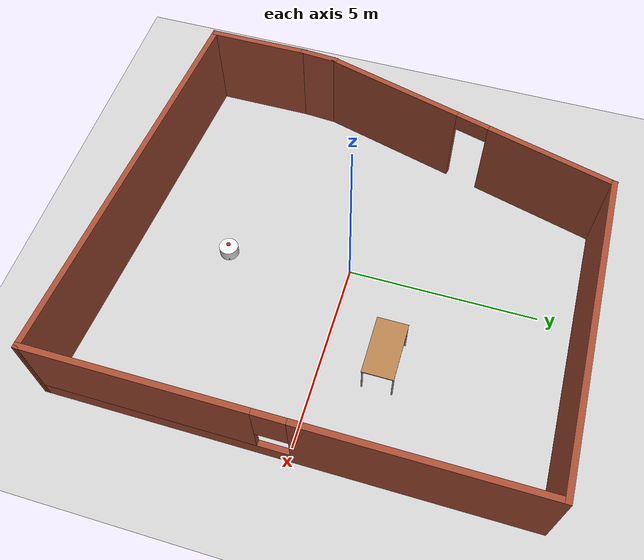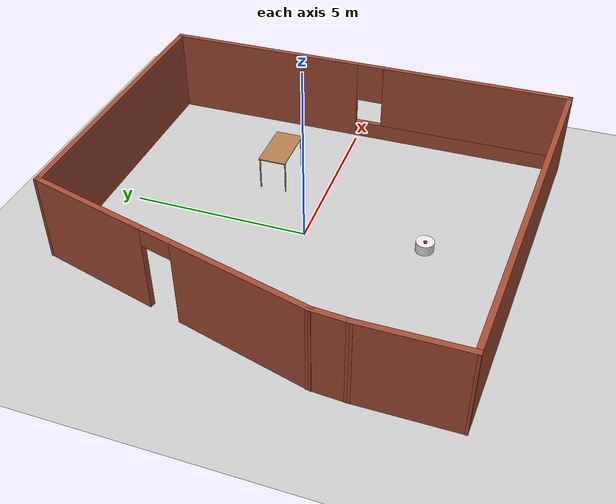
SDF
<sdf version="1.7">
 <world name="default">
  <light name="sun" type="directional">
   <pose>0 0 10 0 -0 0</pose>
   <diffuse>0.8 0.8 0.8 1</diffuse>
   <specular>0.2 0.2 0.2 1</specular>
   <attenuation>
    <range>1000</range>
    <constant>0.9</constant>
    <linear>0.01</linear>
    <quadratic>0.001</quadratic>
   </attenuation>
   <direction>-0.5 0.1 -0.9</direction>
   <spot><inner_angle>0</inner_angle><outer_angle>0</outer_angle><falloff>0</falloff></spot>
  </light>
  <model name="ground_plane">
   <static>1</static>
   <link name="link">
    <collision name="collision">
     <geometry><plane><normal>0 0 1</normal><size>100 100</size></plane></geometry>
     <surface><friction><ode><mu>100</mu><mu2>50</mu2></ode></friction></surface>
    </collision>
    <visual name="visual">
     <cast_shadows>0</cast_shadows>
     <geometry><plane><normal>0 0 1</normal><size>100 100</size></plane></geometry>
     <material>
      <script><uri>file://media/materials/scripts/gazebo.material</uri><name>Gazebo/Grey</name></script>
     </material>
    </visual>
   </link>
  </model>
  <gravity>0 0 -9.8</gravity>
  <magnetic_field>6e-06 2.3e-05 -4.2e-05</magnetic_field>
  <atmosphere type="adiabatic"/>
  <physics type="ode">
   <max_step_size>0.001</max_step_size>
   <real_time_factor>1</real_time_factor>
   <real_time_update_rate>1000</real_time_update_rate>
  </physics>
  <scene><ambient>0.4 0.4 0.4 1</ambient><background>0.7 0.7 0.7 1</background><shadows>1</shadows></scene>
  <spherical_coordinates>
   <surface_model>EARTH_WGS84</surface_model>
   <latitude_deg>0</latitude_deg>
   <longitude_deg>0</longitude_deg>
   <elevation>0</elevation>
   <heading_deg>0</heading_deg>
  </spherical_coordinates>
  <model name="my_bot">
   <link name="base_link">
    <inertial>
     <pose>0.063333 0 0.171667 0 -0 0</pose>
     <mass>0.3</mass>
     <inertia>
      <ixx>0.00760333</ixx>
      <ixy>0</ixy>
      <ixz>0.00238667</ixz>
      <iyy>0.00861</iyy>
      <iyz>0</iyz>
      <izz>0.00435667</izz>
     </inertia>
    </inertial>
    <collision name="base_link_fixed_joint_lump__chassis_collision">
     <pose>0.05 0 0.175 0 -0 0</pose>
     <geometry><cylinder><length>0.3</length><radius>0.25</radius></cylinder></geometry>
    </collision>
    <collision name="base_link_fixed_joint_lump__caster_wheel_collision_1">
     <pose>0.14 0 0 0 -0 0</pose>
     <geometry><sphere><radius>0.05</radius></sphere></geometry>
     <surface><friction><ode><mu>0.001</mu><mu2>0.001</mu2></ode></friction></surface>
    </collision>
    <collision name="base_link_fixed_joint_lump__laser_frame_collision_2">
     <pose>0 0 0.34 0 -0 0</pose>
     <geometry><cylinder><length>0.04</length><radius>0.05</radius></cylinder></geometry>
    </collision>
    <visual name="base_link_fixed_joint_lump__chassis_visual">
     <pose>0.05 0 0.175 0 -0 0</pose>
     <geometry><cylinder><length>0.3</length><radius>0.25</radius></cylinder></geometry>
     <material>
      <script><name>Gazebo/White</name><uri>file://media/materials/scripts/gazebo.material</uri></script>
     </material>
    </visual>
    <visual name="base_link_fixed_joint_lump__camera_link_visual_1">
     <pose>0.3 0 0.08 0 -0 0</pose>
     <geometry><box><size>0.01 0.03 0.03</size></box></geometry>
     <material>
      <script><name>Gazebo/Red</name><uri>file://media/materials/scripts/gazebo.material</uri></script>
     </material>
    </visual>
    <visual name="base_link_fixed_joint_lump__caster_wheel_visual_2">
     <pose>0.14 0 0 0 -0 0</pose>
     <geometry><sphere><radius>0.05</radius></sphere></geometry>
     <material>
      <script><name>Gazebo/Black</name><uri>file://media/materials/scripts/gazebo.material</uri></script>
     </material>
    </visual>
    <visual name="base_link_fixed_joint_lump__laser_frame_visual_3">
     <pose>0 0 0.34 0 -0 0</pose>
     <geometry><cylinder><length>0.04</length><radius>0.05</radius></cylinder></geometry>
     <material>
      <script><name>Gazebo/Red</name><uri>file://media/materials/scripts/gazebo.material</uri></script>
     </material>
    </visual>
    <sensor name="camera" type="camera">
     <visualize>1</visualize>
     <update_rate>10</update_rate>
     <camera>
      <horizontal_fov>1.089</horizontal_fov>
      <image><format>R8G8B8</format><width>640</width><height>480</height></image>
      <clip><near>0.05</near><far>8</far></clip>
     </camera>
     <plugin name="camera_controller" filename="libgazebo_ros_camera.so">
      <frame_name>camera_link_optical</frame_name>
     </plugin>
     <pose>0.3 0 0.08 0 -0 0</pose>
    </sensor>
    <sensor name="laser" type="ray">
     <visualize>0</visualize>
     <update_rate>10</update_rate>
     <ray>
      <scan>
       <horizontal>
        <samples>360</samples>
        <min_angle>-3.14</min_angle>
        <max_angle>3.14</max_angle>
        <resolution>1</resolution>
       </horizontal>
       <vertical><samples>1</samples><min_angle>0</min_angle><max_angle>0</max_angle></vertical>
      </scan>
      <range><min>0.3</min><max>12</max></range>
     </ray>
     <plugin name="laser_controller" filename="libgazebo_ros_ray_sensor.so">
      <ros><argument>~/out:=scan</argument></ros>
      <output_type>sensor_msgs/LaserScan</output_type>
      <frame_name>laser_frame</frame_name>
     </plugin>
     <pose>0 0 0.34 0 -0 0</pose>
    </sensor>
   </link>
   <joint name="left_wheel_joint" type="revolute">
    <pose relative_to="base_link">0 0.175 0 -1.5708 0 0</pose>
    <parent>base_link</parent>
    <child>left_wheel</child>
    <axis>
     <xyz>0 0 1</xyz>
     <limit><lower>-1e+16</lower><upper>1e+16</upper></limit>
     <dynamics><spring_reference>0</spring_reference><spring_stiffness>0</spring_stiffness></dynamics>
    </axis>
   </joint>
   <link name="left_wheel">
    <pose relative_to="left_wheel_joint">0 0 0 0 -0 0</pose>
    <inertial>
     <mass>0.1</mass>
     <inertia>
      <ixx>8.33333e-05</ixx>
      <ixy>0</ixy>
      <ixz>0</ixz>
      <iyy>8.33333e-05</iyy>
      <iyz>0</iyz>
      <izz>0.000125</izz>
     </inertia>
    </inertial>
    <collision name="left_wheel_collision"><geometry><sphere><radius>0.05</radius></sphere></geometry></collision>
    <visual name="left_wheel_visual">
     <geometry><cylinder><length>0.04</length><radius>0.05</radius></cylinder></geometry>
     <material>
      <script><name>Gazebo/Blue</name><uri>file://media/materials/scripts/gazebo.material</uri></script>
     </material>
    </visual>
   </link>
   <joint name="right_wheel_joint" type="revolute">
    <pose relative_to="base_link">0 -0.175 0 1.5708 -0 0</pose>
    <parent>base_link</parent>
    <child>right_wheel</child>
    <axis>
     <xyz>0 0 -1</xyz>
     <limit><lower>-1e+16</lower><upper>1e+16</upper></limit>
     <dynamics><spring_reference>0</spring_reference><spring_stiffness>0</spring_stiffness></dynamics>
    </axis>
   </joint>
   <link name="right_wheel">
    <pose relative_to="right_wheel_joint">0 0 0 0 -0 0</pose>
    <inertial>
     <mass>0.1</mass>
     <inertia>
      <ixx>8.33333e-05</ixx>
      <ixy>0</ixy>
      <ixz>0</ixz>
      <iyy>8.33333e-05</iyy>
      <iyz>0</iyz>
      <izz>0.000125</izz>
     </inertia>
    </inertial>
    <collision name="right_wheel_collision">
     <geometry><sphere><radius>0.05</radius></sphere></geometry>
    </collision>
    <visual name="right_wheel_visual">
     <geometry><cylinder><length>0.04</length><radius>0.05</radius></cylinder></geometry>
     <material>
      <script><name>Gazebo/Blue</name><uri>file://media/materials/scripts/gazebo.material</uri></script>
     </material>
    </visual>
   </link>
   <static>0</static>
   <plugin name="gazebo_ros2_control" filename="libgazebo_ros2_control.so">
    <parameters>/home/rocco/dev_ws/install/mobile_rob/share/mobile_rob/config/my_controllers.yaml</parameters>
   </plugin>
   <pose>0.29082 -3.27248 0.049999 -7e-06 -9e-06 0.347618</pose>
  </model>
  <model name="my_building">
   <pose>0.110913 -0.087671 0 0 -0 0</pose>
   <link name="Wall_0">
    <collision name="Wall_0_Collision">
     <geometry><box><size>2.75 0.15 2.5</size></box></geometry>
     <pose>0 0 1.25 0 -0 0</pose>
    </collision>
    <visual name="Wall_0_Visual">
     <pose>0 0 1.25 0 -0 0</pose>
     <geometry><box><size>2.75 0.15 2.5</size></box></geometry>
     <material>
      <script><uri>file://media/materials/scripts/gazebo.material</uri><name>Gazebo/Bricks</name></script>
      <ambient>1 1 1 1</ambient>
     </material>
     <meta><layer>0</layer></meta>
    </visual>
    <pose>-5.12996 -3.98528 0 0 -0 -1.5708</pose>
   </link>
   <link name="Wall_2">
    <collision name="Wall_2_Collision">
     <geometry><box><size>1.05777 0.15 2.5</size></box></geometry>
     <pose>0 0 1.25 0 -0 0</pose>
    </collision>
    <visual name="Wall_2_Visual">
     <pose>0 0 1.25 0 -0 0</pose>
     <geometry><box><size>1.05777 0.15 2.5</size></box></geometry>
     <material>
      <script><uri>file://media/materials/scripts/gazebo.material</uri><name>Gazebo/Bricks</name></script>
      <ambient>1 1 1 1</ambient>
     </material>
     <meta><layer>0</layer></meta>
    </visual>
    <pose>-5.09822 -2.2325 0 0 -0 -1.64078</pose>
   </link>
   <link name="Wall_4">
    <pose>-4.01826 2.13227 0 0 -0 1.309</pose>
    <visual name="Wall_4_Visual_0">
     <pose>-2.20393 0 1.25 0 -0 0</pose>
     <geometry><box><size>3.84215 0.15 2.5</size></box></geometry>
     <material>
      <script><uri>file://media/materials/scripts/gazebo.material</uri><name>Gazebo/Bricks</name></script>
      <ambient>1 1 1 1</ambient>
     </material>
     <meta><layer>0</layer></meta>
    </visual>
    <collision name="Wall_4_Collision_0">
     <geometry><box><size>3.84215 0.15 2.5</size></box></geometry>
     <pose>-2.20393 0 1.25 0 -0 0</pose>
    </collision>
    <visual name="Wall_4_Visual_1">
     <pose>2.37107 0 1.25 0 -0 0</pose>
     <geometry><box><size>3.50785 0.15 2.5</size></box></geometry>
     <material>
      <script><uri>file://media/materials/scripts/gazebo.material</uri><name>Gazebo/Bricks</name></script>
      <ambient>1 1 1 1</ambient>
     </material>
     <meta><layer>0</layer></meta>
    </visual>
    <collision name="Wall_4_Collision_1">
     <geometry><box><size>3.50785 0.15 2.5</size></box></geometry>
     <pose>2.37107 0 1.25 0 -0 0</pose>
    </collision>
    <visual name="Wall_4_Visual_2">
     <pose>0.167148 0 2.25 0 -0 0</pose>
     <geometry><box><size>0.9 0.15 0.5</size></box></geometry>
     <material>
      <script><uri>file://media/materials/scripts/gazebo.material</uri><name>Gazebo/Bricks</name></script>
      <ambient>1 1 1 1</ambient>
     </material>
     <meta><layer>0</layer></meta>
    </visual>
    <collision name="Wall_4_Collision_2">
     <geometry><box><size>0.9 0.15 0.5</size></box></geometry>
     <pose>0.167148 0 2.25 0 -0 0</pose>
    </collision>
   </link>
   <link name="Wall_5">
    <collision name="Wall_5_Collision">
     <geometry><box><size>8.25 0.15 2.5</size></box></geometry>
     <pose>0 0 1.25 0 -0 0</pose>
    </collision>
    <visual name="Wall_5_Visual">
     <pose>0 0 1.25 0 -0 0</pose>
     <geometry><box><size>8.25 0.15 2.5</size></box></geometry>
     <material>
      <script><uri>file://media/materials/scripts/gazebo.material</uri><name>Gazebo/Bricks</name></script>
      <ambient>1 1 1 1</ambient>
     </material>
     <meta><layer>0</layer></meta>
    </visual>
    <pose>1.07996 6.04427 0 0 -0 0</pose>
   </link>
   <link name="Wall_6">
    <pose>5.12996 -0.005725 0 0 -0 -1.5708</pose>
    <visual name="Wall_6_Visual_0">
     <pose>-3.15038 0 1.25 0 -0 0</pose>
     <geometry><box><size>5.94924 0.15 2.5</size></box></geometry>
     <material>
      <script><uri>file://media/materials/scripts/gazebo.material</uri><name>Gazebo/Bricks</name></script>
      <ambient>1 1 1 1</ambient>
     </material>
     <meta><layer>0</layer></meta>
    </visual>
    <collision name="Wall_6_Collision_0">
     <geometry><box><size>5.94924 0.15 2.5</size></box></geometry>
     <pose>-3.15038 0 1.25 0 -0 0</pose>
    </collision>
    <visual name="Wall_6_Visual_1">
     <pose>2.97462 0 0.25 0 -0 0</pose>
     <geometry><box><size>6.30076 0.15 0.5</size></box></geometry>
     <material>
      <script><uri>file://media/materials/scripts/gazebo.material</uri><name>Gazebo/Bricks</name></script>
      <ambient>1 1 1 1</ambient>
     </material>
     <meta><layer>0</layer></meta>
    </visual>
    <collision name="Wall_6_Collision_1">
     <geometry><box><size>6.30076 0.15 0.5</size></box></geometry>
     <pose>2.97462 0 0.25 0 -0 0</pose>
    </collision>
    <visual name="Wall_6_Visual_2">
     <pose>3.37462 0 1.5 0 -0 0</pose>
     <geometry><box><size>5.50076 0.15 2</size></box></geometry>
     <material>
      <script><uri>file://media/materials/scripts/gazebo.material</uri><name>Gazebo/Bricks</name></script>
      <ambient>1 1 1 1</ambient>
     </material>
     <meta><layer>0</layer></meta>
    </visual>
    <collision name="Wall_6_Collision_2">
     <geometry><box><size>5.50076 0.15 2</size></box></geometry>
     <pose>3.37462 0 1.5 0 -0 0</pose>
    </collision>
    <visual name="Wall_6_Visual_3">
     <pose>0.22424 0 1.9 0 -0 0</pose>
     <geometry><box><size>0.8 0.15 1.2</size></box></geometry>
     <material>
      <script><uri>file://media/materials/scripts/gazebo.material</uri><name>Gazebo/Bricks</name></script>
      <ambient>1 1 1 1</ambient>
     </material>
     <meta><layer>0</layer></meta>
    </visual>
    <collision name="Wall_6_Collision_3">
     <geometry><box><size>0.8 0.15 1.2</size></box></geometry>
     <pose>0.22424 0 1.9 0 -0 0</pose>
    </collision>
   </link>
   <link name="Wall_7">
    <collision name="Wall_7_Collision">
     <geometry><box><size>10.4388 0.15 2.5</size></box></geometry>
     <pose>0 0 1.25 0 -0 0</pose>
    </collision>
    <visual name="Wall_7_Visual">
     <pose>0 0 1.25 0 -0 0</pose>
     <geometry><box><size>10.4388 0.15 2.5</size></box></geometry>
     <material>
      <script><uri>file://media/materials/scripts/gazebo.material</uri><name>Gazebo/Bricks</name></script>
      <ambient>1 1 1 1</ambient>
     </material>
     <meta><layer>0</layer></meta>
    </visual>
    <pose>0 -5.6705 0 0 -0 3.06664</pose>
   </link>
   <static>1</static>
  </model>
  <model name="Table">
   <static>1</static>
   <link name="link">
    <collision name="surface">
     <pose>0 0 1 0 -0 0</pose>
     <geometry><box><size>1.5 0.8 0.03</size></box></geometry>
     <surface><friction><ode><mu>0.6</mu><mu2>0.6</mu2></ode></friction></surface>
    </collision>
    <visual name="visual1">
     <pose>0 0 1 0 -0 0</pose>
     <geometry><box><size>1.5 0.8 0.03</size></box></geometry>
     <material>
      <diffuse>1 1 1 1</diffuse>
      <script><uri>file://media/materials/scripts/gazebo.material</uri><name>Gazebo/Wood</name></script>
      <pbr>
       <metal>
        <albedo_map>https://fuel.ignitionrobotics.org/1.0/openrobotics/models/table/3/files/Table_Diffuse.jpg</albedo_map>
       </metal>
      </pbr>
     </material>
    </visual>
    <collision name="front_left_leg">
     <pose>0.68 0.38 0.5 0 -0 0</pose>
     <geometry><cylinder><radius>0.02</radius><length>1</length></cylinder></geometry>
    </collision>
    <visual name="front_left_leg">
     <pose>0.68 0.38 0.5 0 -0 0</pose>
     <geometry><cylinder><radius>0.02</radius><length>1</length></cylinder></geometry>
     <material>
      <diffuse>0.5 0.5 0.5 1</diffuse>
      <script><uri>file://media/materials/scripts/gazebo.material</uri><name>Gazebo/Grey</name></script>
     </material>
    </visual>
    <collision name="front_right_leg">
     <pose>0.68 -0.38 0.5 0 -0 0</pose>
     <geometry><cylinder><radius>0.02</radius><length>1</length></cylinder></geometry>
    </collision>
    <visual name="front_right_leg">
     <pose>0.68 -0.38 0.5 0 -0 0</pose>
     <geometry><cylinder><radius>0.02</radius><length>1</length></cylinder></geometry>
     <material>
      <diffuse>0.5 0.5 0.5 1</diffuse>
      <script><uri>file://media/materials/scripts/gazebo.material</uri><name>Gazebo/Grey</name></script>
     </material>
    </visual>
    <collision name="back_right_leg">
     <pose>-0.68 -0.38 0.5 0 -0 0</pose>
     <geometry><cylinder><radius>0.02</radius><length>1</length></cylinder></geometry>
    </collision>
    <visual name="back_right_leg">
     <pose>-0.68 -0.38 0.5 0 -0 0</pose>
     <geometry><cylinder><radius>0.02</radius><length>1</length></cylinder></geometry>
     <material>
      <diffuse>0.5 0.5 0.5 1</diffuse>
      <script><uri>file://media/materials/scripts/gazebo.material</uri><name>Gazebo/Grey</name></script>
     </material>
    </visual>
    <collision name="back_left_leg">
     <pose>-0.68 0.38 0.5 0 -0 0</pose>
     <geometry><cylinder><radius>0.02</radius><length>1</length></cylinder></geometry>
    </collision>
    <visual name="back_left_leg">
     <pose>-0.68 0.38 0.5 0 -0 0</pose>
     <geometry><cylinder><radius>0.02</radius><length>1</length></cylinder></geometry>
     <material>
      <diffuse>0.5 0.5 0.5 1</diffuse>
      <script><uri>file://media/materials/scripts/gazebo.material</uri><name>Gazebo/Grey</name></script>
     </material>
    </visual>
   </link>
   <pose>2.34994 1.53191 0 0 -0 0</pose>
  </model>
 </world>
</sdf>
